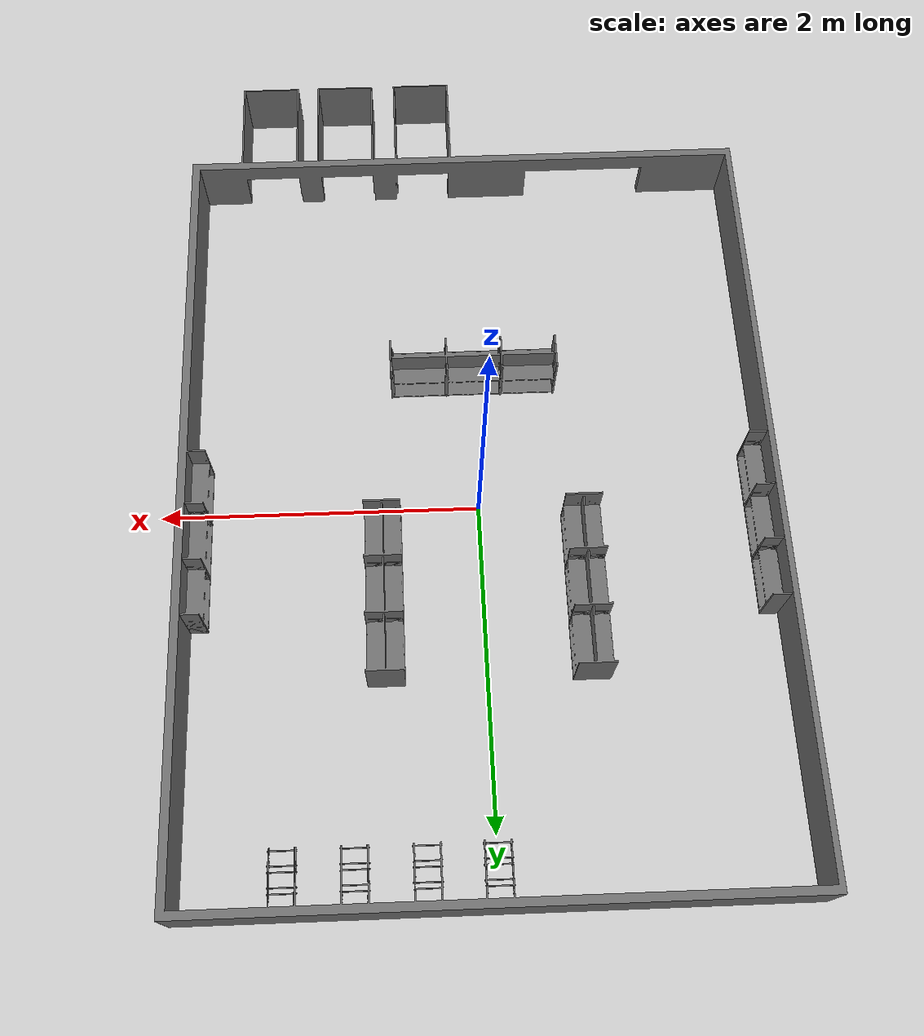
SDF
<?xml version="1.0" ?>
<sdf version="1.8">
    <world name="dt_world">
        <physics name="1ms" type="ignored">
            <max_step_size>0.001</max_step_size>
            <real_time_factor>1.0</real_time_factor>
        </physics>
        <plugin
            filename="libignition-gazebo-physics-system.so"
            name="ignition::gazebo::systems::Physics">
        </plugin>
        <plugin
            filename="libignition-gazebo-user-commands-system.so"
            name="ignition::gazebo::systems::UserCommands">
        </plugin>
        <plugin
            filename="libignition-gazebo-scene-broadcaster-system.so"
            name="ignition::gazebo::systems::SceneBroadcaster">
        </plugin>
        <plugin
            filename="libignition-gazebo-sensors-system.so"
            name="ignition::gazebo::systems::Sensors">
            <render_engine>ogre2</render_engine>
        </plugin>

        <scene>
            <ambient>1.0 1.0 1.0</ambient>
            <background>0.8 0.8 0.8</background>
            <grid>true</grid>
        </scene>

        <light type="directional" name="sun">
            <cast_shadows>true</cast_shadows>
            <pose>0 0 10 0 0 0</pose>
            <diffuse>0.8 0.8 0.8 1</diffuse>
            <specular>0.2 0.2 0.2 1</specular>
            <attenuation>

                <range>1000</range>
                <constant>0.9</constant>
                <linear>0.01</linear>
                <quadratic>0.001</quadratic>
            </attenuation>
            <direction>-0.5 0.1 -0.9</direction>
        </light>

        <model name="ground_plane">
            <static>true</static>
            <link name="link">
                <collision name="collision">
                    <geometry>
                        <plane>
                            <normal>0 0 1</normal>
                        </plane>
                    </geometry>
                </collision>
                <visual name="visual">
                    <geometry>
                        <plane>
                            <normal>0 0 1</normal>
                            <size>100 100</size>
                        </plane>
                    </geometry>
                    <material>
                        <ambient>0.8 0.8 0.8 1</ambient>
                        <diffuse>0.8 0.8 0.8 1</diffuse>
                        <specular>0.8 0.8 0.8 1</specular>
                    </material>
                </visual>
            </link>
        </model>

        <include>
            <uri>model://Map_DT</uri>
            <pose>0 0 0 0 0 0</pose>
        </include>

    </world>
</sdf>

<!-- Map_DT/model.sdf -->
<sdf version="1.6">
  <model name="Map_DT">
    <static>true</static>
    <link name="link">
      <visual name="body">
        <pose>0 0 0 0 0 0</pose>
        <geometry>
          <mesh>
            <uri>./meshes/Map_DT_simplified.stl</uri>
            <scale>0.001 0.001 0.001</scale>
          </mesh>
        </geometry>
        <material>
          <ambient>0.44 0.44 0.44 1</ambient>
          <diffuse>0.44 0.44 0.44 1</diffuse>
          <specular>0.1 0.1 0.1 1</specular>
        </material>
      </visual>

      <collision name="collision">
        <pose>0 0 0 0 0 0</pose>
        <geometry>
          <mesh>
            <uri>./meshes/Map_DT_simplified.stl</uri>
            <scale>0.001 0.001 0.001</scale>
          </mesh>
        </geometry>
      </collision>
    </link>
  </model>
</sdf>
